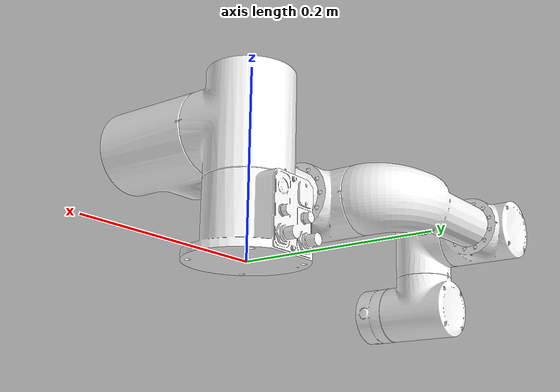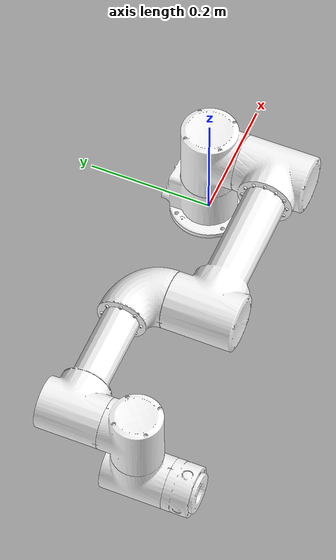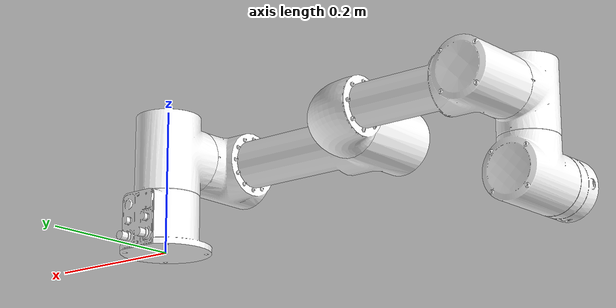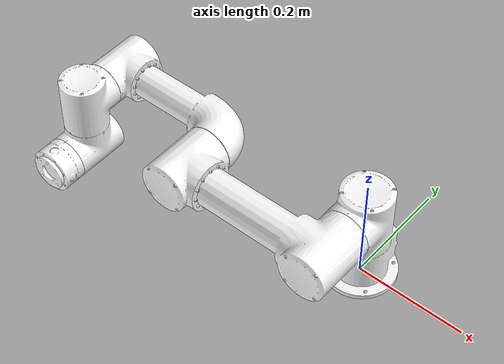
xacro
<?xml version="1.0"?>
<robot xmlns:xacro="http://www.ros.org/wiki/xacro" name="fairino3mt_v6_robot">
  <xacro:arg name="fairino_file" default="fairino.yaml" />
  <xacro:arg name="hardware_mode" default="real" />

  <!-- Import fairino3mt_v6_robot urdf file -->
  <xacro:include filename="$(find fairino_description)/urdf/fairino3_mt_v6.urdf" />

  <!-- Import control_xacro -->
  <xacro:include filename="$(find fairino_description)/urdf/fairino.ros2_control.xacro" />

  <xacro:fairino_ros2_control
    name="fairino_ros2_control"
    fairino_file="$(arg fairino_file)"
    hardware_mode="$(arg hardware_mode)"
  />
</robot>

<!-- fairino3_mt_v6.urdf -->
<robot
  name="fairino3mt_v6_robot">
  <link
    name="base_link">
    <inertial>
      <origin
        xyz="-1.5389E-05 0.0050006 0.035526"
        rpy="0 0 0" />
      <mass
        value="0.60007" />
      <inertia
        ixx="0.00077666"
        ixy="5.9011E-07"
        ixz="4.3886E-07"
        iyy="0.00066312"
        iyz="-1.924E-05"
        izz="0.00080686" />
    </inertial>
    <visual>
      <origin
        xyz="0 0 0"
        rpy="0 0 0" />
      <geometry>
        <mesh
          filename="package://fairino_description/meshes/fairino3_mt_v6/base_link.STL" />
      </geometry>
      <material
        name="">
        <color
          rgba="1 1 1 1" />
      </material>
    </visual>
  </link>
  <link
    name="shoulder_link">
    <inertial>
      <origin
        xyz="-0.00016 -0.01399 0.00153"
        rpy="0 0 0" />
      <mass
        value="1.69" />
      <inertia
        ixx="0.00230233"
        ixy="0.00000796"
        ixz="0.00000988"
        iyy="0.00172232"
        iyz="0.00003216"
        izz="0.00230714" />
    </inertial>
    <visual>
      <origin
        xyz="0 0 0"
        rpy="0 0 0" />
      <geometry>
        <mesh
          filename="package://fairino_description/meshes/fairino3_mt_v6/shoulder_link.STL" />
      </geometry>
      <material
        name="">
        <color
          rgba="1 1 1 1" />
      </material>
    </visual>
  </link>
  <joint
    name="joint1"
    type="revolute">
    <origin
      xyz="0 0 0.1398"
      rpy="-3.1416 0 3.1416" />
    <parent
      link="base_link" />
    <child
      link="shoulder_link" />
    <axis
      xyz="0 0 -1" />
    <limit
      lower="-3.054"
      upper="3.054"
      effort="0"
      velocity="2.618" />
  </joint>
  <link
    name="upperarm_link">
    <inertial>
      <origin
        xyz="0.14 0 0.10134"
        rpy="0 0 0" />
      <mass
        value="3.73" />
      <inertia
        ixx="0.00529686"
        ixy="0.00005608"
        ixz="0.00000013"
        iyy="0.07120429"
        iyz="0.00000005"
        izz="0.06998187" />
    </inertial>
    <visual>
      <origin
        xyz="0 0 0"
        rpy="0 0 0" />
      <geometry>
        <mesh
          filename="package://fairino_description/meshes/fairino3_mt_v6/upperarm_link.STL" />
      </geometry>
      <material
        name="">
        <color
          rgba="1 1 1 1" />
      </material>
    </visual>
  </link>
  <joint
    name="joint2"
    type="revolute">
    <origin
      xyz="-1.2826E-05 -0.114 0"
      rpy="-1.6057 0 3.1416" />
    <parent
      link="shoulder_link" />
    <child
      link="upperarm_link" />
    <axis
      xyz="0.00011251 -0.034899 0.99939" />
    <limit
      lower="-4.6251"
      upper="1.4835"
      effort="0"
      velocity="2.618" />
  </joint>
  <link
    name="forearm_link">
    <inertial>
      <origin
        xyz="0.06324 0.00008 0.01104"
        rpy="0 0 0" />
      <mass
        value="1.84" />
      <inertia
        ixx="0.00224646"
        ixy="0.00000255"
        ixz="0.00000765"
        iyy="0.01764629"
        iyz="0.00000075"
        izz="0.01732032" />
    </inertial>
    <visual>
      <origin
        xyz="0 0 0"
        rpy="0 0 0" />
      <geometry>
        <mesh
          filename="package://fairino_description/meshes/fairino3_mt_v6/forearm_link.STL" />
      </geometry>
      <material
        name="">
        <color
          rgba="1 1 1 1" />
      </material>
    </visual>
  </link>
  <joint
    name="joint3"
    type="revolute">
    <origin
      xyz="-0.28 0 3.1484E-05"
      rpy="3.1416 0 3.1416" />
    <parent
      link="upperarm_link" />
    <child
      link="forearm_link" />
    <axis
      xyz="0.00011251 0.034899 -0.99939" />
    <limit
      lower="-2.618"
      upper="2.618"
      effort="0"
      velocity="2.618" />
  </joint>
  <link
    name="wrist1_link">
    <inertial>
      <origin
        xyz="0.0001 -0.00203 0.01255"
        rpy="0 0 0" />
      <mass
        value="1.2" />
      <inertia
        ixx="0.00131806"
        ixy="-0.00000258"
        ixz="-0.00000247"
        iyy="0.00130342"
        iyz="-0.00002666"
        izz="0.0009916" />
    </inertial>
    <visual>
      <origin
        xyz="0 0 0"
        rpy="0 0 0" />
      <geometry>
        <mesh
          filename="package://fairino_description/meshes/fairino3_mt_v6/wrist1_link.STL" />
      </geometry>
      <material
        name="">
        <color
          rgba="1 1 1 1" />
      </material>
    </visual>
  </link>
  <joint
    name="joint4"
    type="revolute">
    <origin
      xyz="0.24001 0.0039775 0.1139"
      rpy="0 0 0" />
    <parent
      link="forearm_link" />
    <child
      link="wrist1_link" />
    <axis
      xyz="0.00011251 0.034899 -0.99939" />
    <limit
      lower="-4.6251"
      upper="1.4835"
      effort="0"
      velocity="3.141" />
  </joint>
  <link
    name="wrist2_link">
    <inertial>
      <origin
        xyz="-0.0001 0.00203 0.01255"
        rpy="0 0 0" />
      <mass
        value="1.2" />
      <inertia
        ixx="0.00131806"
        ixy="-0.00000258"
        ixz="0.00000247"
        iyy="0.00130342"
        iyz="0.00002666"
        izz="0.0009916" />
    </inertial>
    <visual>
      <origin
        xyz="0 0 0"
        rpy="0 0 0" />
      <geometry>
        <mesh
          filename="package://fairino_description/meshes/fairino3_mt_v6/wrist2_link.STL" />
      </geometry>
      <material
        name="">
        <color
          rgba="1 1 1 1" />
      </material>
    </visual>
  </link>
  <joint
    name="joint5"
    type="revolute">
    <origin
      xyz="-1.1476E-05 -0.0035597 -0.10194"
      rpy="-1.6057 0 0" />
    <parent
      link="wrist1_link" />
    <child
      link="wrist2_link" />
    <axis
      xyz="0 0 -1" />
    <limit
      lower="0"
      upper="6.1087"
      effort="0"
      velocity="3.141" />
  </joint>
  <link
    name="wrist3_link">
    <inertial>
      <origin
        xyz="-0.00148 -0.00154 -0.0179"
        rpy="0 0 0" />
      <mass
        value="0.53" />
      <inertia
        ixx="0.00033622"
        ixy="0.00000116"
        ixz="0.00000051"
        iyy="0.00033508"
        iyz="0.00000089"
        izz="0.00053494" />
    </inertial>
    <visual>
      <origin
        xyz="0 0 0"
        rpy="0 0 0" />
      <geometry>
        <mesh
          filename="package://fairino_description/meshes/fairino3_mt_v6/wrist3_link.STL" />
      </geometry>
      <material
        name="">
        <color
          rgba="1 1 1 1" />
      </material>
    </visual>
  </link>
  <joint
    name="joint6"
    type="revolute">
    <origin
      xyz="0 0 -0.102"
      rpy="1.6057 0 0" />
    <parent
      link="wrist2_link" />
    <child
      link="wrist3_link" />
    <axis
      xyz="0.00011251 0.034899 -0.99939" />
    <limit
      lower="-3.054"
      upper="3.054"
      effort="0"
      velocity="3.141" />
  </joint>
</robot>
